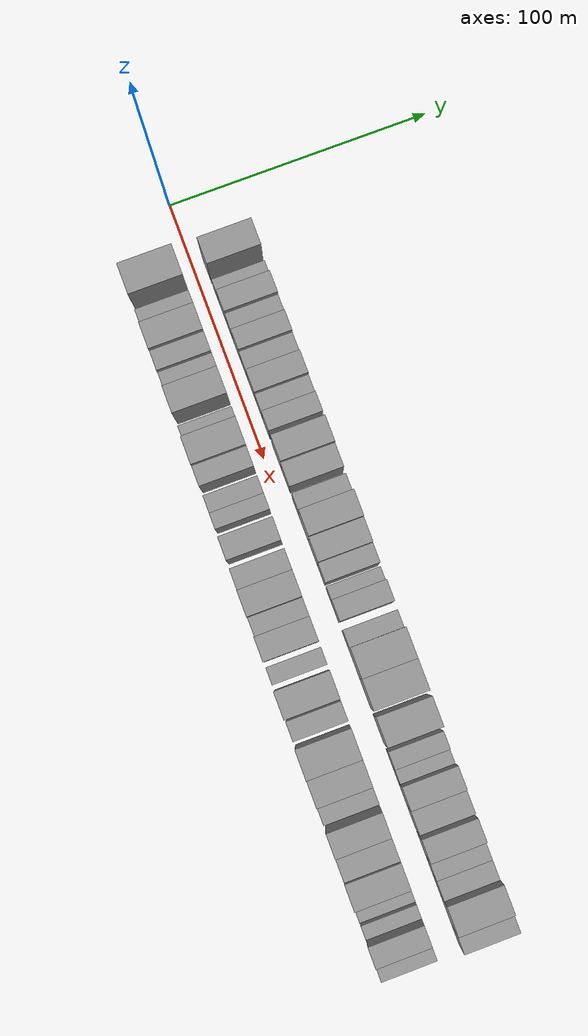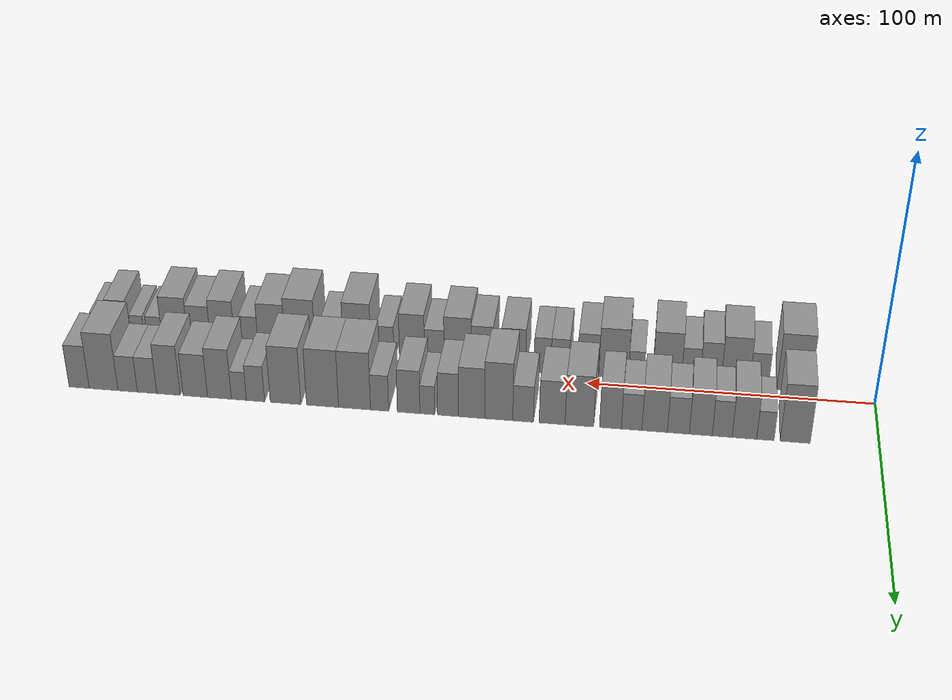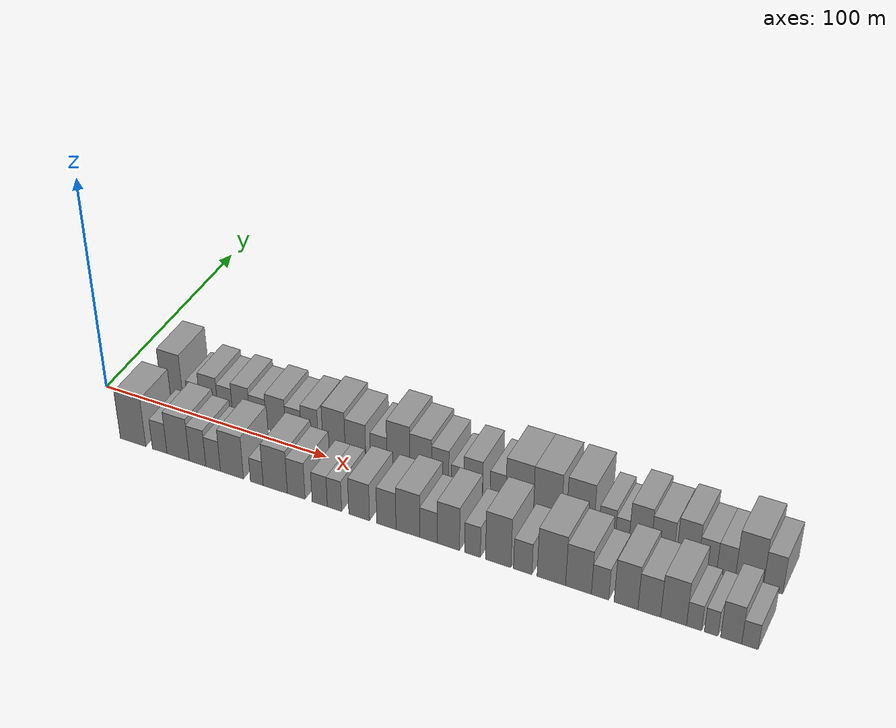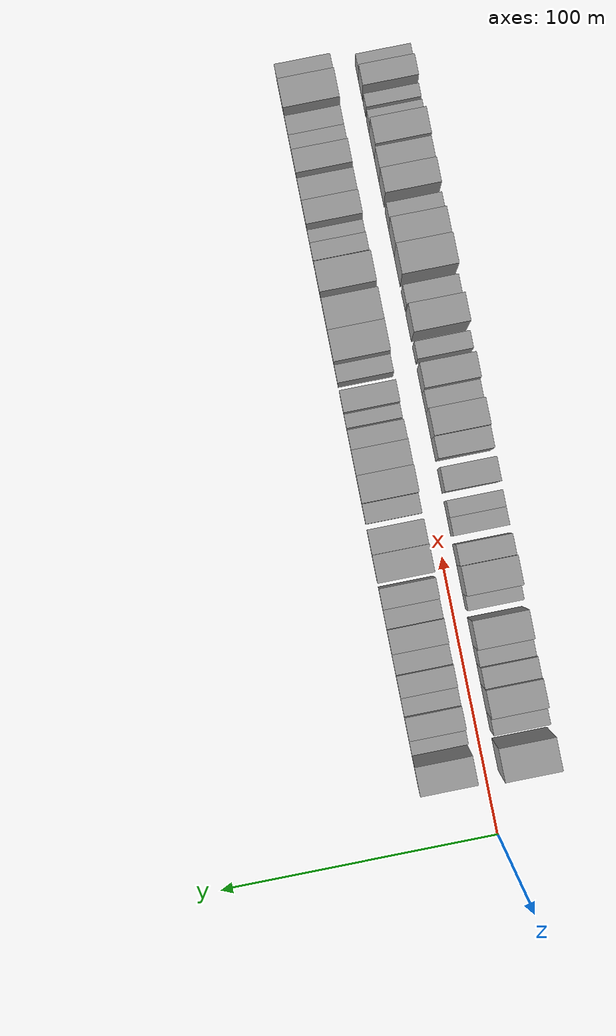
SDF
<sdf version="1.6">
 <world name="default">
  <scene>
   <sky><clouds><speed>12</speed></clouds></sky>
   <ambient>0.4 0.4 0.4 1</ambient>
   <background>0.7 0.7 0.7 1</background>
   <shadows>1</shadows>
  </scene>
  <gravity>0 0 -9.8066</gravity>
  <magnetic_field>6e-06 2.3e-05 -4.2e-05</magnetic_field>
  <physics default="0" name="default_physics" type="ode">
   <ode>
    <solver>
     <type>quick</type>
     <iters>10</iters>
     <sor>1.0</sor>
     <use_dynamic_moi_rescaling>0</use_dynamic_moi_rescaling>
    </solver>
    <constraints>
     <cfm>0</cfm>
     <erp>0.2</erp>
     <contact_max_correcting_vel>100</contact_max_correcting_vel>
     <contact_surface_layer>0.001</contact_surface_layer>
    </constraints>
   </ode>
   <max_step_size>0.004</max_step_size>
   <real_time_factor>1</real_time_factor>
   <real_time_update_rate>250</real_time_update_rate>
  </physics>
  <light name="sun" type="directional">
   <pose>0 0 10 0 0 0</pose>
   <diffuse>0.8 0.8 0.8 1</diffuse>
   <specular>0.2 0.2 0.2 1</specular>
   <attenuation>
    <range>1000</range>
    <constant>0.9</constant>
    <linear>0.01</linear>
    <quadratic>0.001</quadratic>
   </attenuation>
   <direction>-0.5 0.1 -0.9</direction>
  </light>
  <model name="building_1">
   <static>1</static>
   <pose>28.0264 14.5000 0 0.000000 0.000000 1.570796</pose>
   <link name="link">
    <pose>0 0 12.00 0 0 0</pose>
    <collision name="collision"><geometry><box><size>20.0000 10.0527 24.0000</size></box></geometry></collision>
    <visual name="visual">
     <cast_shadows>0</cast_shadows>
     <geometry><box><size>20.0000 10.0527 24.0000</size></box></geometry>
     <material>
      <script>
       <uri>model://grey_wall/materials/scripts</uri>
       <uri>model://grey_wall/materials/textures</uri>
       <name>vrc/grey_wall</name>
      </script>
     </material>
    </visual>
   </link>
  </model>
  <model name="building_2">
   <static>1</static>
   <pose>37.9833 14.5000 0 0.000000 0.000000 1.570796</pose>
   <link name="link">
    <pose>0 0 6.00 0 0 0</pose>
    <collision name="collision"><geometry><box><size>20.0000 5.8612 12.0000</size></box></geometry></collision>
    <visual name="visual">
     <cast_shadows>0</cast_shadows>
     <geometry><box><size>20.0000 5.8612 12.0000</size></box></geometry>
     <material>
      <script>
       <uri>model://grey_wall/materials/scripts</uri>
       <uri>model://grey_wall/materials/textures</uri>
       <name>vrc/grey_wall</name>
      </script>
     </material>
    </visual>
   </link>
  </model>
  <model name="building_3">
   <static>1</static>
   <pose>45.0234 14.5000 0 0.000000 0.000000 1.570796</pose>
   <link name="link">
    <pose>0 0 9.00 0 0 0</pose>
    <collision name="collision"><geometry><box><size>20.0000 8.2191 18.0000</size></box></geometry></collision>
    <visual name="visual">
     <cast_shadows>0</cast_shadows>
     <geometry><box><size>20.0000 8.2191 18.0000</size></box></geometry>
     <material>
      <script>
       <uri>model://grey_wall/materials/scripts</uri>
       <uri>model://grey_wall/materials/textures</uri>
       <name>vrc/grey_wall</name>
      </script>
     </material>
    </visual>
   </link>
  </model>
  <model name="building_4">
   <static>1</static>
   <pose>52.4865 14.5000 0 0.000000 0.000000 1.570796</pose>
   <link name="link">
    <pose>0 0 7.50 0 0 0</pose>
    <collision name="collision"><geometry><box><size>20.0000 6.7072 15.0000</size></box></geometry></collision>
    <visual name="visual">
     <cast_shadows>0</cast_shadows>
     <geometry><box><size>20.0000 6.7072 15.0000</size></box></geometry>
     <material>
      <script>
       <uri>model://grey_wall/materials/scripts</uri>
       <uri>model://grey_wall/materials/textures</uri>
       <name>vrc/grey_wall</name>
      </script>
     </material>
    </visual>
   </link>
  </model>
  <model name="building_5">
   <static>1</static>
   <pose>59.7163 14.5000 0 0.000000 0.000000 1.570796</pose>
   <link name="link">
    <pose>0 0 9.00 0 0 0</pose>
    <collision name="collision"><geometry><box><size>20.0000 7.7524 18.0000</size></box></geometry></collision>
    <visual name="visual">
     <cast_shadows>0</cast_shadows>
     <geometry><box><size>20.0000 7.7524 18.0000</size></box></geometry>
     <material>
      <script>
       <uri>model://grey_wall/materials/scripts</uri>
       <uri>model://grey_wall/materials/textures</uri>
       <name>vrc/grey_wall</name>
      </script>
     </material>
    </visual>
   </link>
  </model>
  <model name="building_6">
   <static>1</static>
   <pose>67.3079 14.5000 0 0.000000 0.000000 1.570796</pose>
   <link name="link">
    <pose>0 0 7.50 0 0 0</pose>
    <collision name="collision"><geometry><box><size>20.0000 7.4306 15.0000</size></box></geometry></collision>
    <visual name="visual">
     <cast_shadows>0</cast_shadows>
     <geometry><box><size>20.0000 7.4306 15.0000</size></box></geometry>
     <material>
      <script>
       <uri>model://grey_wall/materials/scripts</uri>
       <uri>model://grey_wall/materials/textures</uri>
       <name>vrc/grey_wall</name>
      </script>
     </material>
    </visual>
   </link>
  </model>
  <model name="building_7">
   <static>1</static>
   <pose>75.3356 14.5000 0 0.000000 0.000000 1.570796</pose>
   <link name="link">
    <pose>0 0 9.00 0 0 0</pose>
    <collision name="collision"><geometry><box><size>20.0000 8.6249 18.0000</size></box></geometry></collision>
    <visual name="visual">
     <cast_shadows>0</cast_shadows>
     <geometry><box><size>20.0000 8.6249 18.0000</size></box></geometry>
     <material>
      <script>
       <uri>model://grey_wall/materials/scripts</uri>
       <uri>model://grey_wall/materials/textures</uri>
       <name>vrc/grey_wall</name>
      </script>
     </material>
    </visual>
   </link>
  </model>
  <model name="building_8">
   <static>1</static>
   <pose>83.1413 14.5000 0 0.000000 0.000000 1.570796</pose>
   <link name="link">
    <pose>0 0 7.50 0 0 0</pose>
    <collision name="collision"><geometry><box><size>20.0000 6.9866 15.0000</size></box></geometry></collision>
    <visual name="visual">
     <cast_shadows>0</cast_shadows>
     <geometry><box><size>20.0000 6.9866 15.0000</size></box></geometry>
     <material>
      <script>
       <uri>model://grey_wall/materials/scripts</uri>
       <uri>model://grey_wall/materials/textures</uri>
       <name>vrc/grey_wall</name>
      </script>
     </material>
    </visual>
   </link>
  </model>
  <model name="building_9">
   <static>1</static>
   <pose>90.3496 14.5000 0 0.000000 0.000000 1.570796</pose>
   <link name="link">
    <pose>0 0 9.00 0 0 0</pose>
    <collision name="collision"><geometry><box><size>20.0000 7.4299 18.0000</size></box></geometry></collision>
    <visual name="visual">
     <cast_shadows>0</cast_shadows>
     <geometry><box><size>20.0000 7.4299 18.0000</size></box></geometry>
     <material>
      <script>
       <uri>model://grey_wall/materials/scripts</uri>
       <uri>model://grey_wall/materials/textures</uri>
       <name>vrc/grey_wall</name>
      </script>
     </material>
    </visual>
   </link>
  </model>
  <model name="building_10">
   <static>1</static>
   <pose>100.9448 14.5000 0 0.000000 0.000000 1.570796</pose>
   <link name="link">
    <pose>0 0 10.50 0 0 0</pose>
    <collision name="collision"><geometry><box><size>20.0000 9.7605 21.0000</size></box></geometry></collision>
    <visual name="visual">
     <cast_shadows>0</cast_shadows>
     <geometry><box><size>20.0000 9.7605 21.0000</size></box></geometry>
     <material>
      <script>
       <uri>model://grey_wall/materials/scripts</uri>
       <uri>model://grey_wall/materials/textures</uri>
       <name>vrc/grey_wall</name>
      </script>
     </material>
    </visual>
   </link>
  </model>
  <model name="building_11">
   <static>1</static>
   <pose>110.2631 14.5000 0 0.000000 0.000000 1.570796</pose>
   <link name="link">
    <pose>0 0 9.00 0 0 0</pose>
    <collision name="collision"><geometry><box><size>20.0000 8.8761 18.0000</size></box></geometry></collision>
    <visual name="visual">
     <cast_shadows>0</cast_shadows>
     <geometry><box><size>20.0000 8.8761 18.0000</size></box></geometry>
     <material>
      <script>
       <uri>model://grey_wall/materials/scripts</uri>
       <uri>model://grey_wall/materials/textures</uri>
       <name>vrc/grey_wall</name>
      </script>
     </material>
    </visual>
   </link>
  </model>
  <model name="building_12">
   <static>1</static>
   <pose>120.2501 14.5000 0 0.000000 0.000000 1.570796</pose>
   <link name="link">
    <pose>0 0 7.50 0 0 0</pose>
    <collision name="collision"><geometry><box><size>20.0000 7.0980 15.0000</size></box></geometry></collision>
    <visual name="visual">
     <cast_shadows>0</cast_shadows>
     <geometry><box><size>20.0000 7.0980 15.0000</size></box></geometry>
     <material>
      <script>
       <uri>model://grey_wall/materials/scripts</uri>
       <uri>model://grey_wall/materials/textures</uri>
       <name>vrc/grey_wall</name>
      </script>
     </material>
    </visual>
   </link>
  </model>
  <model name="building_13">
   <static>1</static>
   <pose>128.6420 14.5000 0 0.000000 0.000000 1.570796</pose>
   <link name="link">
    <pose>0 0 12.00 0 0 0</pose>
    <collision name="collision"><geometry><box><size>20.0000 9.6857 24.0000</size></box></geometry></collision>
    <visual name="visual">
     <cast_shadows>0</cast_shadows>
     <geometry><box><size>20.0000 9.6857 24.0000</size></box></geometry>
     <material>
      <script>
       <uri>model://grey_wall/materials/scripts</uri>
       <uri>model://grey_wall/materials/textures</uri>
       <name>vrc/grey_wall</name>
      </script>
     </material>
    </visual>
   </link>
  </model>
  <model name="building_14">
   <static>1</static>
   <pose>138.0492 14.5000 0 0.000000 0.000000 1.570796</pose>
   <link name="link">
    <pose>0 0 10.50 0 0 0</pose>
    <collision name="collision"><geometry><box><size>20.0000 9.1287 21.0000</size></box></geometry></collision>
    <visual name="visual">
     <cast_shadows>0</cast_shadows>
     <geometry><box><size>20.0000 9.1287 21.0000</size></box></geometry>
     <material>
      <script>
       <uri>model://grey_wall/materials/scripts</uri>
       <uri>model://grey_wall/materials/textures</uri>
       <name>vrc/grey_wall</name>
      </script>
     </material>
    </visual>
   </link>
  </model>
  <model name="building_15">
   <static>1</static>
   <pose>146.2273 14.5000 0 0.000000 0.000000 1.570796</pose>
   <link name="link">
    <pose>0 0 9.00 0 0 0</pose>
    <collision name="collision"><geometry><box><size>20.0000 7.2274 18.0000</size></box></geometry></collision>
    <visual name="visual">
     <cast_shadows>0</cast_shadows>
     <geometry><box><size>20.0000 7.2274 18.0000</size></box></geometry>
     <material>
      <script>
       <uri>model://grey_wall/materials/scripts</uri>
       <uri>model://grey_wall/materials/textures</uri>
       <name>vrc/grey_wall</name>
      </script>
     </material>
    </visual>
   </link>
  </model>
  <model name="building_16">
   <static>1</static>
   <pose>153.3948 14.5000 0 0.000000 0.000000 1.570796</pose>
   <link name="link">
    <pose>0 0 6.00 0 0 0</pose>
    <collision name="collision"><geometry><box><size>20.0000 5.1076 12.0000</size></box></geometry></collision>
    <visual name="visual">
     <cast_shadows>0</cast_shadows>
     <geometry><box><size>20.0000 5.1076 12.0000</size></box></geometry>
     <material>
      <script>
       <uri>model://grey_wall/materials/scripts</uri>
       <uri>model://grey_wall/materials/textures</uri>
       <name>vrc/grey_wall</name>
      </script>
     </material>
    </visual>
   </link>
  </model>
  <model name="building_17">
   <static>1</static>
   <pose>159.8865 14.5000 0 0.000000 0.000000 1.570796</pose>
   <link name="link">
    <pose>0 0 9.00 0 0 0</pose>
    <collision name="collision"><geometry><box><size>20.0000 7.8758 18.0000</size></box></geometry></collision>
    <visual name="visual">
     <cast_shadows>0</cast_shadows>
     <geometry><box><size>20.0000 7.8758 18.0000</size></box></geometry>
     <material>
      <script>
       <uri>model://grey_wall/materials/scripts</uri>
       <uri>model://grey_wall/materials/textures</uri>
       <name>vrc/grey_wall</name>
      </script>
     </material>
    </visual>
   </link>
  </model>
  <model name="building_18">
   <static>1</static>
   <pose>170.0318 14.5000 0 0.000000 0.000000 1.570796</pose>
   <link name="link">
    <pose>0 0 7.50 0 0 0</pose>
    <collision name="collision"><geometry><box><size>20.0000 6.4147 15.0000</size></box></geometry></collision>
    <visual name="visual">
     <cast_shadows>0</cast_shadows>
     <geometry><box><size>20.0000 6.4147 15.0000</size></box></geometry>
     <material>
      <script>
       <uri>model://grey_wall/materials/scripts</uri>
       <uri>model://grey_wall/materials/textures</uri>
       <name>vrc/grey_wall</name>
      </script>
     </material>
    </visual>
   </link>
  </model>
  <model name="building_19">
   <static>1</static>
   <pose>178.8279 14.5000 0 0.000000 0.000000 1.570796</pose>
   <link name="link">
    <pose>0 0 12.00 0 0 0</pose>
    <collision name="collision"><geometry><box><size>20.0000 11.1776 24.0000</size></box></geometry></collision>
    <visual name="visual">
     <cast_shadows>0</cast_shadows>
     <geometry><box><size>20.0000 11.1776 24.0000</size></box></geometry>
     <material>
      <script>
       <uri>model://grey_wall/materials/scripts</uri>
       <uri>model://grey_wall/materials/textures</uri>
       <name>vrc/grey_wall</name>
      </script>
     </material>
    </visual>
   </link>
  </model>
  <model name="building_20">
   <static>1</static>
   <pose>190.0567 14.5000 0 0.000000 0.000000 1.570796</pose>
   <link name="link">
    <pose>0 0 12.00 0 0 0</pose>
    <collision name="collision"><geometry><box><size>20.0000 11.2800 24.0000</size></box></geometry></collision>
    <visual name="visual">
     <cast_shadows>0</cast_shadows>
     <geometry><box><size>20.0000 11.2800 24.0000</size></box></geometry>
     <material>
      <script>
       <uri>model://grey_wall/materials/scripts</uri>
       <uri>model://grey_wall/materials/textures</uri>
       <name>vrc/grey_wall</name>
      </script>
     </material>
    </visual>
   </link>
  </model>
  <model name="building_21">
   <static>1</static>
   <pose>203.1118 14.5000 0 0.000000 0.000000 1.570796</pose>
   <link name="link">
    <pose>0 0 12.00 0 0 0</pose>
    <collision name="collision"><geometry><box><size>20.0000 10.8301 24.0000</size></box></geometry></collision>
    <visual name="visual">
     <cast_shadows>0</cast_shadows>
     <geometry><box><size>20.0000 10.8301 24.0000</size></box></geometry>
     <material>
      <script>
       <uri>model://grey_wall/materials/scripts</uri>
       <uri>model://grey_wall/materials/textures</uri>
       <name>vrc/grey_wall</name>
      </script>
     </material>
    </visual>
   </link>
  </model>
  <model name="building_22">
   <static>1</static>
   <pose>213.7627 14.5000 0 0.000000 0.000000 1.570796</pose>
   <link name="link">
    <pose>0 0 7.50 0 0 0</pose>
    <collision name="collision"><geometry><box><size>20.0000 6.4716 15.0000</size></box></geometry></collision>
    <visual name="visual">
     <cast_shadows>0</cast_shadows>
     <geometry><box><size>20.0000 6.4716 15.0000</size></box></geometry>
     <material>
      <script>
       <uri>model://grey_wall/materials/scripts</uri>
       <uri>model://grey_wall/materials/textures</uri>
       <name>vrc/grey_wall</name>
      </script>
     </material>
    </visual>
   </link>
  </model>
  <model name="building_23">
   <static>1</static>
   <pose>219.6627 14.5000 0 0.000000 0.000000 1.570796</pose>
   <link name="link">
    <pose>0 0 6.00 0 0 0</pose>
    <collision name="collision"><geometry><box><size>20.0000 5.3285 12.0000</size></box></geometry></collision>
    <visual name="visual">
     <cast_shadows>0</cast_shadows>
     <geometry><box><size>20.0000 5.3285 12.0000</size></box></geometry>
     <material>
      <script>
       <uri>model://grey_wall/materials/scripts</uri>
       <uri>model://grey_wall/materials/textures</uri>
       <name>vrc/grey_wall</name>
      </script>
     </material>
    </visual>
   </link>
  </model>
  <model name="building_24">
   <static>1</static>
   <pose>226.5750 14.5000 0 0.000000 0.000000 1.570796</pose>
   <link name="link">
    <pose>0 0 10.50 0 0 0</pose>
    <collision name="collision"><geometry><box><size>20.0000 8.4960 21.0000</size></box></geometry></collision>
    <visual name="visual">
     <cast_shadows>0</cast_shadows>
     <geometry><box><size>20.0000 8.4960 21.0000</size></box></geometry>
     <material>
      <script>
       <uri>model://grey_wall/materials/scripts</uri>
       <uri>model://grey_wall/materials/textures</uri>
       <name>vrc/grey_wall</name>
      </script>
     </material>
    </visual>
   </link>
  </model>
  <model name="building_25">
   <static>1</static>
   <pose>235.1935 14.5000 0 0.000000 0.000000 1.570796</pose>
   <link name="link">
    <pose>0 0 9.00 0 0 0</pose>
    <collision name="collision"><geometry><box><size>20.0000 8.7410 18.0000</size></box></geometry></collision>
    <visual name="visual">
     <cast_shadows>0</cast_shadows>
     <geometry><box><size>20.0000 8.7410 18.0000</size></box></geometry>
     <material>
      <script>
       <uri>model://grey_wall/materials/scripts</uri>
       <uri>model://grey_wall/materials/textures</uri>
       <name>vrc/grey_wall</name>
      </script>
     </material>
    </visual>
   </link>
  </model>
  <model name="building_26">
   <static>1</static>
   <pose>244.7764 14.5000 0 0.000000 0.000000 1.570796</pose>
   <link name="link">
    <pose>0 0 10.50 0 0 0</pose>
    <collision name="collision"><geometry><box><size>20.0000 8.4247 21.0000</size></box></geometry></collision>
    <visual name="visual">
     <cast_shadows>0</cast_shadows>
     <geometry><box><size>20.0000 8.4247 21.0000</size></box></geometry>
     <material>
      <script>
       <uri>model://grey_wall/materials/scripts</uri>
       <uri>model://grey_wall/materials/textures</uri>
       <name>vrc/grey_wall</name>
      </script>
     </material>
    </visual>
   </link>
  </model>
  <model name="building_27">
   <static>1</static>
   <pose>252.4728 14.5000 0 0.000000 0.000000 1.570796</pose>
   <link name="link">
    <pose>0 0 7.50 0 0 0</pose>
    <collision name="collision"><geometry><box><size>20.0000 6.9681 15.0000</size></box></geometry></collision>
    <visual name="visual">
     <cast_shadows>0</cast_shadows>
     <geometry><box><size>20.0000 6.9681 15.0000</size></box></geometry>
     <material>
      <script>
       <uri>model://grey_wall/materials/scripts</uri>
       <uri>model://grey_wall/materials/textures</uri>
       <name>vrc/grey_wall</name>
      </script>
     </material>
    </visual>
   </link>
  </model>
  <model name="building_28">
   <static>1</static>
   <pose>259.4414 14.5000 0 0.000000 0.000000 1.570796</pose>
   <link name="link">
    <pose>0 0 7.50 0 0 0</pose>
    <collision name="collision"><geometry><box><size>20.0000 6.9691 15.0000</size></box></geometry></collision>
    <visual name="visual">
     <cast_shadows>0</cast_shadows>
     <geometry><box><size>20.0000 6.9691 15.0000</size></box></geometry>
     <material>
      <script>
       <uri>model://grey_wall/materials/scripts</uri>
       <uri>model://grey_wall/materials/textures</uri>
       <name>vrc/grey_wall</name>
      </script>
     </material>
    </visual>
   </link>
  </model>
  <model name="building_29">
   <static>1</static>
   <pose>268.1267 14.5000 0 0.000000 0.000000 1.570796</pose>
   <link name="link">
    <pose>0 0 12.00 0 0 0</pose>
    <collision name="collision"><geometry><box><size>20.0000 10.4015 24.0000</size></box></geometry></collision>
    <visual name="visual">
     <cast_shadows>0</cast_shadows>
     <geometry><box><size>20.0000 10.4015 24.0000</size></box></geometry>
     <material>
      <script>
       <uri>model://grey_wall/materials/scripts</uri>
       <uri>model://grey_wall/materials/textures</uri>
       <name>vrc/grey_wall</name>
      </script>
     </material>
    </visual>
   </link>
  </model>
  <model name="building_30">
   <static>1</static>
   <pose>276.9671 14.5000 0 0.000000 0.000000 1.570796</pose>
   <link name="link">
    <pose>0 0 9.00 0 0 0</pose>
    <collision name="collision"><geometry><box><size>20.0000 7.2794 18.0000</size></box></geometry></collision>
    <visual name="visual">
     <cast_shadows>0</cast_shadows>
     <geometry><box><size>20.0000 7.2794 18.0000</size></box></geometry>
     <material>
      <script>
       <uri>model://grey_wall/materials/scripts</uri>
       <uri>model://grey_wall/materials/textures</uri>
       <name>vrc/grey_wall</name>
      </script>
     </material>
    </visual>
   </link>
  </model>
  <model name="building_31">
   <static>1</static>
   <pose>27.8304 -14.5000 0 0.000000 0.000000 1.570796</pose>
   <link name="link">
    <pose>0 0 12.00 0 0 0</pose>
    <collision name="collision"><geometry><box><size>20.0000 11.6608 24.0000</size></box></geometry></collision>
    <visual name="visual">
     <cast_shadows>0</cast_shadows>
     <geometry><box><size>20.0000 11.6608 24.0000</size></box></geometry>
     <material>
      <script>
       <uri>model://grey_wall/materials/scripts</uri>
       <uri>model://grey_wall/materials/textures</uri>
       <name>vrc/grey_wall</name>
      </script>
     </material>
    </visual>
   </link>
  </model>
  <model name="building_32">
   <static>1</static>
   <pose>39.9441 -14.5000 0 0.000000 0.000000 1.570796</pose>
   <link name="link">
    <pose>0 0 7.50 0 0 0</pose>
    <collision name="collision"><geometry><box><size>20.0000 6.5665 15.0000</size></box></geometry></collision>
    <visual name="visual">
     <cast_shadows>0</cast_shadows>
     <geometry><box><size>20.0000 6.5665 15.0000</size></box></geometry>
     <material>
      <script>
       <uri>model://grey_wall/materials/scripts</uri>
       <uri>model://grey_wall/materials/textures</uri>
       <name>vrc/grey_wall</name>
      </script>
     </material>
    </visual>
   </link>
  </model>
  <model name="building_33">
   <static>1</static>
   <pose>48.2317 -14.5000 0 0.000000 0.000000 1.570796</pose>
   <link name="link">
    <pose>0 0 10.50 0 0 0</pose>
    <collision name="collision"><geometry><box><size>20.0000 10.0088 21.0000</size></box></geometry></collision>
    <visual name="visual">
     <cast_shadows>0</cast_shadows>
     <geometry><box><size>20.0000 10.0088 21.0000</size></box></geometry>
     <material>
      <script>
       <uri>model://grey_wall/materials/scripts</uri>
       <uri>model://grey_wall/materials/textures</uri>
       <name>vrc/grey_wall</name>
      </script>
     </material>
    </visual>
   </link>
  </model>
  <model name="building_34">
   <static>1</static>
   <pose>56.9319 -14.5000 0 0.000000 0.000000 1.570796</pose>
   <link name="link">
    <pose>0 0 9.00 0 0 0</pose>
    <collision name="collision"><geometry><box><size>20.0000 7.3916 18.0000</size></box></geometry></collision>
    <visual name="visual">
     <cast_shadows>0</cast_shadows>
     <geometry><box><size>20.0000 7.3916 18.0000</size></box></geometry>
     <material>
      <script>
       <uri>model://grey_wall/materials/scripts</uri>
       <uri>model://grey_wall/materials/textures</uri>
       <name>vrc/grey_wall</name>
      </script>
     </material>
    </visual>
   </link>
  </model>
  <model name="building_35">
   <static>1</static>
   <pose>63.8548 -14.5000 0 0.000000 0.000000 1.570796</pose>
   <link name="link">
    <pose>0 0 7.50 0 0 0</pose>
    <collision name="collision"><geometry><box><size>20.0000 6.4541 15.0000</size></box></geometry></collision>
    <visual name="visual">
     <cast_shadows>0</cast_shadows>
     <geometry><box><size>20.0000 6.4541 15.0000</size></box></geometry>
     <material>
      <script>
       <uri>model://grey_wall/materials/scripts</uri>
       <uri>model://grey_wall/materials/textures</uri>
       <name>vrc/grey_wall</name>
      </script>
     </material>
    </visual>
   </link>
  </model>
  <model name="building_36">
   <static>1</static>
   <pose>72.1530 -14.5000 0 0.000000 0.000000 1.570796</pose>
   <link name="link">
    <pose>0 0 10.50 0 0 0</pose>
    <collision name="collision"><geometry><box><size>20.0000 10.1422 21.0000</size></box></geometry></collision>
    <visual name="visual">
     <cast_shadows>0</cast_shadows>
     <geometry><box><size>20.0000 10.1422 21.0000</size></box></geometry>
     <material>
      <script>
       <uri>model://grey_wall/materials/scripts</uri>
       <uri>model://grey_wall/materials/textures</uri>
       <name>vrc/grey_wall</name>
      </script>
     </material>
    </visual>
   </link>
  </model>
  <model name="building_37">
   <static>1</static>
   <pose>82.9955 -14.5000 0 0.000000 0.000000 1.570796</pose>
   <link name="link">
    <pose>0 0 6.00 0 0 0</pose>
    <collision name="collision"><geometry><box><size>20.0000 5.5428 12.0000</size></box></geometry></collision>
    <visual name="visual">
     <cast_shadows>0</cast_shadows>
     <geometry><box><size>20.0000 5.5428 12.0000</size></box></geometry>
     <material>
      <script>
       <uri>model://grey_wall/materials/scripts</uri>
       <uri>model://grey_wall/materials/textures</uri>
       <name>vrc/grey_wall</name>
      </script>
     </material>
    </visual>
   </link>
  </model>
  <model name="building_38">
   <static>1</static>
   <pose>90.9913 -14.5000 0 0.000000 0.000000 1.570796</pose>
   <link name="link">
    <pose>0 0 10.50 0 0 0</pose>
    <collision name="collision"><geometry><box><size>20.0000 10.4489 21.0000</size></box></geometry></collision>
    <visual name="visual">
     <cast_shadows>0</cast_shadows>
     <geometry><box><size>20.0000 10.4489 21.0000</size></box></geometry>
     <material>
      <script>
       <uri>model://grey_wall/materials/scripts</uri>
       <uri>model://grey_wall/materials/textures</uri>
       <name>vrc/grey_wall</name>
      </script>
     </material>
    </visual>
   </link>
  </model>
  <model name="building_39">
   <static>1</static>
   <pose>99.9947 -14.5000 0 0.000000 0.000000 1.570796</pose>
   <link name="link">
    <pose>0 0 9.00 0 0 0</pose>
    <collision name="collision"><geometry><box><size>20.0000 7.5578 18.0000</size></box></geometry></collision>
    <visual name="visual">
     <cast_shadows>0</cast_shadows>
     <geometry><box><size>20.0000 7.5578 18.0000</size></box></geometry>
     <material>
      <script>
       <uri>model://grey_wall/materials/scripts</uri>
       <uri>model://grey_wall/materials/textures</uri>
       <name>vrc/grey_wall</name>
      </script>
     </material>
    </visual>
   </link>
  </model>
  <model name="building_40">
   <static>1</static>
   <pose>109.9954 -14.5000 0 0.000000 0.000000 1.570796</pose>
   <link name="link">
    <pose>0 0 7.50 0 0 0</pose>
    <collision name="collision"><geometry><box><size>20.0000 6.4437 15.0000</size></box></geometry></collision>
    <visual name="visual">
     <cast_shadows>0</cast_shadows>
     <geometry><box><size>20.0000 6.4437 15.0000</size></box></geometry>
     <material>
      <script>
       <uri>model://grey_wall/materials/scripts</uri>
       <uri>model://grey_wall/materials/textures</uri>
       <name>vrc/grey_wall</name>
      </script>
     </material>
    </visual>
   </link>
  </model>
  <model name="building_41">
   <static>1</static>
   <pose>116.2322 -14.5000 0 0.000000 0.000000 1.570796</pose>
   <link name="link">
    <pose>0 0 7.50 0 0 0</pose>
    <collision name="collision"><geometry><box><size>20.0000 6.0299 15.0000</size></box></geometry></collision>
    <visual name="visual">
     <cast_shadows>0</cast_shadows>
     <geometry><box><size>20.0000 6.0299 15.0000</size></box></geometry>
     <material>
      <script>
       <uri>model://grey_wall/materials/scripts</uri>
       <uri>model://grey_wall/materials/textures</uri>
       <name>vrc/grey_wall</name>
      </script>
     </material>
    </visual>
   </link>
  </model>
  <model name="building_42">
   <static>1</static>
   <pose>126.5799 -14.5000 0 0.000000 0.000000 1.570796</pose>
   <link name="link">
    <pose>0 0 9.00 0 0 0</pose>
    <collision name="collision"><geometry><box><size>20.0000 8.6655 18.0000</size></box></geometry></collision>
    <visual name="visual">
     <cast_shadows>0</cast_shadows>
     <geometry><box><size>20.0000 8.6655 18.0000</size></box></geometry>
     <material>
      <script>
       <uri>model://grey_wall/materials/scripts</uri>
       <uri>model://grey_wall/materials/textures</uri>
       <name>vrc/grey_wall</name>
      </script>
     </material>
    </visual>
   </link>
  </model>
  <model name="building_43">
   <static>1</static>
   <pose>137.8677 -14.5000 0 0.000000 0.000000 1.570796</pose>
   <link name="link">
    <pose>0 0 9.00 0 0 0</pose>
    <collision name="collision"><geometry><box><size>20.0000 7.9102 18.0000</size></box></geometry></collision>
    <visual name="visual">
     <cast_shadows>0</cast_shadows>
     <geometry><box><size>20.0000 7.9102 18.0000</size></box></geometry>
     <material>
      <script>
       <uri>model://grey_wall/materials/scripts</uri>
       <uri>model://grey_wall/materials/textures</uri>
       <name>vrc/grey_wall</name>
      </script>
     </material>
    </visual>
   </link>
  </model>
  <model name="building_44">
   <static>1</static>
   <pose>146.6726 -14.5000 0 0.000000 0.000000 1.570796</pose>
   <link name="link">
    <pose>0 0 10.50 0 0 0</pose>
    <collision name="collision"><geometry><box><size>20.0000 9.6996 21.0000</size></box></geometry></collision>
    <visual name="visual">
     <cast_shadows>0</cast_shadows>
     <geometry><box><size>20.0000 9.6996 21.0000</size></box></geometry>
     <material>
      <script>
       <uri>model://grey_wall/materials/scripts</uri>
       <uri>model://grey_wall/materials/textures</uri>
       <name>vrc/grey_wall</name>
      </script>
     </material>
    </visual>
   </link>
  </model>
  <model name="building_45">
   <static>1</static>
   <pose>155.0358 -14.5000 0 0.000000 0.000000 1.570796</pose>
   <link name="link">
    <pose>0 0 7.50 0 0 0</pose>
    <collision name="collision"><geometry><box><size>20.0000 7.0267 15.0000</size></box></geometry></collision>
    <visual name="visual">
     <cast_shadows>0</cast_shadows>
     <geometry><box><size>20.0000 7.0267 15.0000</size></box></geometry>
     <material>
      <script>
       <uri>model://grey_wall/materials/scripts</uri>
       <uri>model://grey_wall/materials/textures</uri>
       <name>vrc/grey_wall</name>
      </script>
     </material>
    </visual>
   </link>
  </model>
  <model name="building_46">
   <static>1</static>
   <pose>163.0676 -14.5000 0 0.000000 0.000000 1.570796</pose>
   <link name="link">
    <pose>0 0 10.50 0 0 0</pose>
    <collision name="collision"><geometry><box><size>20.0000 9.0370 21.0000</size></box></geometry></collision>
    <visual name="visual">
     <cast_shadows>0</cast_shadows>
     <geometry><box><size>20.0000 9.0370 21.0000</size></box></geometry>
     <material>
      <script>
       <uri>model://grey_wall/materials/scripts</uri>
       <uri>model://grey_wall/materials/textures</uri>
       <name>vrc/grey_wall</name>
      </script>
     </material>
    </visual>
   </link>
  </model>
  <model name="building_47">
   <static>1</static>
   <pose>172.7438 -14.5000 0 0.000000 0.000000 1.570796</pose>
   <link name="link">
    <pose>0 0 7.50 0 0 0</pose>
    <collision name="collision"><geometry><box><size>20.0000 6.3155 15.0000</size></box></geometry></collision>
    <visual name="visual">
     <cast_shadows>0</cast_shadows>
     <geometry><box><size>20.0000 6.3155 15.0000</size></box></geometry>
     <material>
      <script>
       <uri>model://grey_wall/materials/scripts</uri>
       <uri>model://grey_wall/materials/textures</uri>
       <name>vrc/grey_wall</name>
      </script>
     </material>
    </visual>
   </link>
  </model>
  <model name="building_48">
   <static>1</static>
   <pose>182.9381 -14.5000 0 0.000000 0.000000 1.570796</pose>
   <link name="link">
    <pose>0 0 12.00 0 0 0</pose>
    <collision name="collision"><geometry><box><size>20.0000 10.0730 24.0000</size></box></geometry></collision>
    <visual name="visual">
     <cast_shadows>0</cast_shadows>
     <geometry><box><size>20.0000 10.0730 24.0000</size></box></geometry>
     <material>
      <script>
       <uri>model://grey_wall/materials/scripts</uri>
       <uri>model://grey_wall/materials/textures</uri>
       <name>vrc/grey_wall</name>
      </script>
     </material>
    </visual>
   </link>
  </model>
  <model name="building_49">
   <static>1</static>
   <pose>192.5870 -14.5000 0 0.000000 0.000000 1.570796</pose>
   <link name="link">
    <pose>0 0 7.50 0 0 0</pose>
    <collision name="collision"><geometry><box><size>20.0000 7.2249 15.0000</size></box></geometry></collision>
    <visual name="visual">
     <cast_shadows>0</cast_shadows>
     <geometry><box><size>20.0000 7.2249 15.0000</size></box></geometry>
     <material>
      <script>
       <uri>model://grey_wall/materials/scripts</uri>
       <uri>model://grey_wall/materials/textures</uri>
       <name>vrc/grey_wall</name>
      </script>
     </material>
    </visual>
   </link>
  </model>
  <model name="building_50">
   <static>1</static>
   <pose>203.7016 -14.5000 0 0.000000 0.000000 1.570796</pose>
   <link name="link">
    <pose>0 0 12.00 0 0 0</pose>
    <collision name="collision"><geometry><box><size>20.0000 11.0044 24.0000</size></box></geometry></collision>
    <visual name="visual">
     <cast_shadows>0</cast_shadows>
     <geometry><box><size>20.0000 11.0044 24.0000</size></box></geometry>
     <material>
      <script>
       <uri>model://grey_wall/materials/scripts</uri>
       <uri>model://grey_wall/materials/textures</uri>
       <name>vrc/grey_wall</name>
      </script>
     </material>
    </visual>
   </link>
  </model>
  <model name="building_51">
   <static>1</static>
   <pose>214.1543 -14.5000 0 0.000000 0.000000 1.570796</pose>
   <link name="link">
    <pose>0 0 10.50 0 0 0</pose>
    <collision name="collision"><geometry><box><size>20.0000 9.9009 21.0000</size></box></geometry></collision>
    <visual name="visual">
     <cast_shadows>0</cast_shadows>
     <geometry><box><size>20.0000 9.9009 21.0000</size></box></geometry>
     <material>
      <script>
       <uri>model://grey_wall/materials/scripts</uri>
       <uri>model://grey_wall/materials/textures</uri>
       <name>vrc/grey_wall</name>
      </script>
     </material>
    </visual>
   </link>
  </model>
  <model name="building_52">
   <static>1</static>
   <pose>222.4095 -14.5000 0 0.000000 0.000000 1.570796</pose>
   <link name="link">
    <pose>0 0 7.50 0 0 0</pose>
    <collision name="collision"><geometry><box><size>20.0000 6.6095 15.0000</size></box></geometry></collision>
    <visual name="visual">
     <cast_shadows>0</cast_shadows>
     <geometry><box><size>20.0000 6.6095 15.0000</size></box></geometry>
     <material>
      <script>
       <uri>model://grey_wall/materials/scripts</uri>
       <uri>model://grey_wall/materials/textures</uri>
       <name>vrc/grey_wall</name>
      </script>
     </material>
    </visual>
   </link>
  </model>
  <model name="building_53">
   <static>1</static>
   <pose>232.1975 -14.5000 0 0.000000 0.000000 1.570796</pose>
   <link name="link">
    <pose>0 0 10.50 0 0 0</pose>
    <collision name="collision"><geometry><box><size>20.0000 8.9667 21.0000</size></box></geometry></collision>
    <visual name="visual">
     <cast_shadows>0</cast_shadows>
     <geometry><box><size>20.0000 8.9667 21.0000</size></box></geometry>
     <material>
      <script>
       <uri>model://grey_wall/materials/scripts</uri>
       <uri>model://grey_wall/materials/textures</uri>
       <name>vrc/grey_wall</name>
      </script>
     </material>
    </visual>
   </link>
  </model>
  <model name="building_54">
   <static>1</static>
   <pose>240.9130 -14.5000 0 0.000000 0.000000 1.570796</pose>
   <link name="link">
    <pose>0 0 9.00 0 0 0</pose>
    <collision name="collision"><geometry><box><size>20.0000 8.4643 18.0000</size></box></geometry></collision>
    <visual name="visual">
     <cast_shadows>0</cast_shadows>
     <geometry><box><size>20.0000 8.4643 18.0000</size></box></geometry>
     <material>
      <script>
       <uri>model://grey_wall/materials/scripts</uri>
       <uri>model://grey_wall/materials/textures</uri>
       <name>vrc/grey_wall</name>
      </script>
     </material>
    </visual>
   </link>
  </model>
  <model name="building_55">
   <static>1</static>
   <pose>249.9056 -14.5000 0 0.000000 0.000000 1.570796</pose>
   <link name="link">
    <pose>0 0 10.50 0 0 0</pose>
    <collision name="collision"><geometry><box><size>20.0000 9.5208 21.0000</size></box></geometry></collision>
    <visual name="visual">
     <cast_shadows>0</cast_shadows>
     <geometry><box><size>20.0000 9.5208 21.0000</size></box></geometry>
     <material>
      <script>
       <uri>model://grey_wall/materials/scripts</uri>
       <uri>model://grey_wall/materials/textures</uri>
       <name>vrc/grey_wall</name>
      </script>
     </material>
    </visual>
   </link>
  </model>
  <model name="building_56">
   <static>1</static>
   <pose>257.4440 -14.5000 0 0.000000 0.000000 1.570796</pose>
   <link name="link">
    <pose>0 0 6.00 0 0 0</pose>
    <collision name="collision"><geometry><box><size>20.0000 5.5560 12.0000</size></box></geometry></collision>
    <visual name="visual">
     <cast_shadows>0</cast_shadows>
     <geometry><box><size>20.0000 5.5560 12.0000</size></box></geometry>
     <material>
      <script>
       <uri>model://grey_wall/materials/scripts</uri>
       <uri>model://grey_wall/materials/textures</uri>
       <name>vrc/grey_wall</name>
      </script>
     </material>
    </visual>
   </link>
  </model>
  <model name="building_57">
   <static>1</static>
   <pose>263.6891 -14.5000 0 0.000000 0.000000 1.570796</pose>
   <link name="link">
    <pose>0 0 6.00 0 0 0</pose>
    <collision name="collision"><geometry><box><size>20.0000 4.9343 12.0000</size></box></geometry></collision>
    <visual name="visual">
     <cast_shadows>0</cast_shadows>
     <geometry><box><size>20.0000 4.9343 12.0000</size></box></geometry>
     <material>
      <script>
       <uri>model://grey_wall/materials/scripts</uri>
       <uri>model://grey_wall/materials/textures</uri>
       <name>vrc/grey_wall</name>
      </script>
     </material>
    </visual>
   </link>
  </model>
  <model name="building_58">
   <static>1</static>
   <pose>270.9557 -14.5000 0 0.000000 0.000000 1.570796</pose>
   <link name="link">
    <pose>0 0 9.00 0 0 0</pose>
    <collision name="collision"><geometry><box><size>20.0000 7.5988 18.0000</size></box></geometry></collision>
    <visual name="visual">
     <cast_shadows>0</cast_shadows>
     <geometry><box><size>20.0000 7.5988 18.0000</size></box></geometry>
     <material>
      <script>
       <uri>model://grey_wall/materials/scripts</uri>
       <uri>model://grey_wall/materials/textures</uri>
       <name>vrc/grey_wall</name>
      </script>
     </material>
    </visual>
   </link>
  </model>
  <model name="building_59">
   <static>1</static>
   <pose>277.7350 -14.5000 0 0.000000 0.000000 1.570796</pose>
   <link name="link">
    <pose>0 0 6.00 0 0 0</pose>
    <collision name="collision"><geometry><box><size>20.0000 5.9599 12.0000</size></box></geometry></collision>
    <visual name="visual">
     <cast_shadows>0</cast_shadows>
     <geometry><box><size>20.0000 5.9599 12.0000</size></box></geometry>
     <material>
      <script>
       <uri>model://grey_wall/materials/scripts</uri>
       <uri>model://grey_wall/materials/textures</uri>
       <name>vrc/grey_wall</name>
      </script>
     </material>
    </visual>
   </link>
  </model>
 </world>
</sdf>
